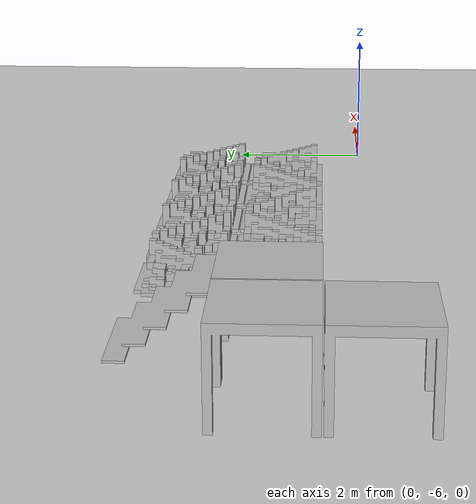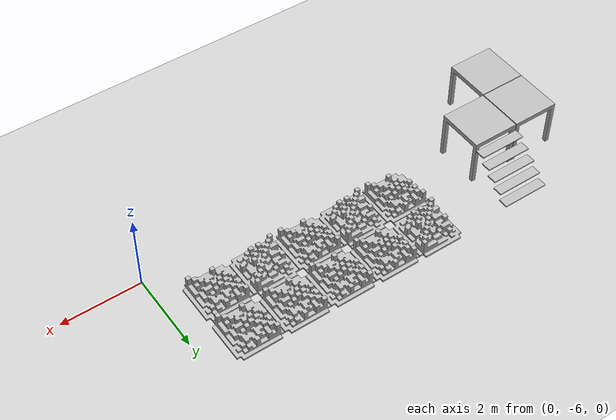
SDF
<sdf version="1.4">
 <world name="default">
  <scene><ambient>0.5 0.5 0.5 1</ambient><background>0.5 0.5 0.5 1</background><shadows>false</shadows></scene>
  <include><uri>model://sun</uri></include>
  <physics type="ode">
   <max_step_size>0.001</max_step_size>
   <real_time_factor>1</real_time_factor>
   <real_time_update_rate>1000</real_time_update_rate>
   <gravity>0 0 -9.8</gravity>
  </physics>
  <light type="directional" name="directional_light_1">
   <cast_shadows>false</cast_shadows>
   <pose>0 0 30 0.1 0.1 0</pose>
   <diffuse>.5 .5 .5 1</diffuse>
   <specular>.1 .1 .1 1</specular>
   <attenuation><range>300</range></attenuation>
   <direction>0.1 0.1 -1</direction>
  </light>
  <model name="plane_model">
   <static>true</static>
   <link name="plane_model_link">
    <collision name="plane_model_collision">
     <geometry><plane><normal>0 0 1</normal><size>100 100</size></plane></geometry>
     <surface>
      <friction>
       <ode><mu>10.0</mu><mu2>10.0</mu2><fdir1>0 0 0</fdir1><slip1>0</slip1><slip2>0</slip2></ode>
      </friction>
      <bounce><restitution_coefficient>0</restitution_coefficient><threshold>1000000.0</threshold></bounce>
      <contact>
       <ode>
        <soft_cfm>0</soft_cfm>
        <soft_erp>0.2</soft_erp>
        <kp>1e10</kp>
        <kd>1</kd>
        <max_vel>100.0</max_vel>
        <min_depth>0.0001</min_depth>
       </ode>
      </contact>
     </surface>
    </collision>
    <visual name="plane_model_visual">
     <cast_shadows>false</cast_shadows>
     <geometry><plane><normal>0 0 1</normal><size>100 100</size></plane></geometry>
     <material><script>Gazebo/Grey</script></material>
    </visual>
   </link>
  </model>
  <model name="stairs_120_1">
   <static>true</static>
   <link name="stairs_120_1_link">
    <pose>-8.4 -3.6 0 0 0 -3.14159</pose>
    <collision name="stairs_120_1_collision">
     <geometry><mesh><uri>file://robocup/other/stairs_120.dae</uri><scale>1 1 1</scale></mesh></geometry>
    </collision>
    <visual name="stairs_120_1_visual">
     <cast_shadows>false</cast_shadows>
     <geometry><mesh><uri>file://robocup/other/stairs_120.dae</uri><scale>1 1 1</scale></mesh></geometry>
    </visual>
   </link>
  </model>
  <model name="elevated_floor_120_1">
   <static>true</static>
   <link name="elevated_floor_120_1_link">
    <pose>-9.6 -4.8 0 0 0 0</pose>
    <collision name="elevated_floor_120_1_collision">
     <geometry><mesh><uri>file://floors/elevated_floor_120.dae</uri><scale>1 1 1</scale></mesh></geometry>
    </collision>
    <visual name="elevated_floor_120_1_visual">
     <cast_shadows>false</cast_shadows>
     <geometry><mesh><uri>file://floors/elevated_floor_120.dae</uri><scale>1 1 1</scale></mesh></geometry>
    </visual>
   </link>
  </model>
  <model name="elevated_floor_120_2">
   <static>true</static>
   <link name="elevated_floor_120_2_link">
    <pose>-8.4 -4.8 0 0 0 0</pose>
    <collision name="elevated_floor_120_2_collision">
     <geometry><mesh><uri>file://floors/elevated_floor_120.dae</uri><scale>1 1 1</scale></mesh></geometry>
    </collision>
    <visual name="elevated_floor_120_2_visual">
     <cast_shadows>false</cast_shadows>
     <geometry><mesh><uri>file://floors/elevated_floor_120.dae</uri><scale>1 1 1</scale></mesh></geometry>
    </visual>
   </link>
  </model>
  <model name="elevated_floor_120_3">
   <static>true</static>
   <link name="elevated_floor_120_3_link">
    <pose>-9.6 -6 0 0 0 0</pose>
    <collision name="elevated_floor_120_3_collision">
     <geometry><mesh><uri>file://floors/elevated_floor_120.dae</uri><scale>1 1 1</scale></mesh></geometry>
    </collision>
    <visual name="elevated_floor_120_3_visual">
     <cast_shadows>false</cast_shadows>
     <geometry><mesh><uri>file://floors/elevated_floor_120.dae</uri><scale>1 1 1</scale></mesh></geometry>
    </visual>
   </link>
  </model>
  <model name="stepfield_red_diagonal_1">
   <static>true</static>
   <link name="stepfield_red_diagonal_1_link">
    <pose>-6 -3.6 0 0 0 0</pose>
    <collision name="stepfield_red_diagonal_1_collision">
     <geometry>
      <mesh><uri>file://robocup/other/stepfield_red_diagonal.dae</uri><scale>1 1 1</scale></mesh>
     </geometry>
    </collision>
    <visual name="stepfield_red_diagonal_1_visual">
     <cast_shadows>false</cast_shadows>
     <geometry>
      <mesh><uri>file://robocup/other/stepfield_red_diagonal.dae</uri><scale>1 1 1</scale></mesh>
     </geometry>
    </visual>
   </link>
  </model>
  <model name="stepfield_red_diagonal_2">
   <static>true</static>
   <link name="stepfield_red_diagonal_2_link">
    <pose>-4.8 -4.8 0 0 0 0</pose>
    <collision name="stepfield_red_diagonal_2_collision">
     <geometry>
      <mesh><uri>file://robocup/other/stepfield_red_diagonal.dae</uri><scale>1 1 1</scale></mesh>
     </geometry>
    </collision>
    <visual name="stepfield_red_diagonal_2_visual">
     <cast_shadows>false</cast_shadows>
     <geometry>
      <mesh><uri>file://robocup/other/stepfield_red_diagonal.dae</uri><scale>1 1 1</scale></mesh>
     </geometry>
    </visual>
   </link>
  </model>
  <model name="stepfield_red_diagonal_3">
   <static>true</static>
   <link name="stepfield_red_diagonal_3_link">
    <pose>-4.8 -3.6 0 0 0 -1.5708</pose>
    <collision name="stepfield_red_diagonal_3_collision">
     <geometry>
      <mesh><uri>file://robocup/other/stepfield_red_diagonal.dae</uri><scale>1 1 1</scale></mesh>
     </geometry>
    </collision>
    <visual name="stepfield_red_diagonal_3_visual">
     <cast_shadows>false</cast_shadows>
     <geometry>
      <mesh><uri>file://robocup/other/stepfield_red_diagonal.dae</uri><scale>1 1 1</scale></mesh>
     </geometry>
    </visual>
   </link>
  </model>
  <model name="stepfield_red_diagonal_4">
   <static>true</static>
   <link name="stepfield_red_diagonal_4_link">
    <pose>-6 -4.8 0 0 0 -1.5708</pose>
    <collision name="stepfield_red_diagonal_4_collision">
     <geometry>
      <mesh><uri>file://robocup/other/stepfield_red_diagonal.dae</uri><scale>1 1 1</scale></mesh>
     </geometry>
    </collision>
    <visual name="stepfield_red_diagonal_4_visual">
     <cast_shadows>false</cast_shadows>
     <geometry>
      <mesh><uri>file://robocup/other/stepfield_red_diagonal.dae</uri><scale>1 1 1</scale></mesh>
     </geometry>
    </visual>
   </link>
  </model>
  <model name="stepfield_red_diagonal_5">
   <static>true</static>
   <link name="stepfield_red_diagonal_5_link">
    <pose>-3.6 -3.6 0 0 0 -1.5708</pose>
    <collision name="stepfield_red_diagonal_5_collision">
     <geometry>
      <mesh><uri>file://robocup/other/stepfield_red_diagonal.dae</uri><scale>1 1 1</scale></mesh>
     </geometry>
    </collision>
    <visual name="stepfield_red_diagonal_5_visual">
     <cast_shadows>false</cast_shadows>
     <geometry>
      <mesh><uri>file://robocup/other/stepfield_red_diagonal.dae</uri><scale>1 1 1</scale></mesh>
     </geometry>
    </visual>
   </link>
  </model>
  <model name="stepfield_red_diagonal_6">
   <static>true</static>
   <link name="stepfield_red_diagonal_6_link">
    <pose>-3.6 -4.8 0 0 0 -1.5708</pose>
    <collision name="stepfield_red_diagonal_6_collision">
     <geometry>
      <mesh><uri>file://robocup/other/stepfield_red_diagonal.dae</uri><scale>1 1 1</scale></mesh>
     </geometry>
    </collision>
    <visual name="stepfield_red_diagonal_6_visual">
     <cast_shadows>false</cast_shadows>
     <geometry>
      <mesh><uri>file://robocup/other/stepfield_red_diagonal.dae</uri><scale>1 1 1</scale></mesh>
     </geometry>
    </visual>
   </link>
  </model>
  <model name="stepfield_red_diagonal_7">
   <static>true</static>
   <link name="stepfield_red_diagonal_7_link">
    <pose>-2.4 -3.6 0 0 0 -1.5708</pose>
    <collision name="stepfield_red_diagonal_7_collision">
     <geometry>
      <mesh><uri>file://robocup/other/stepfield_red_diagonal.dae</uri><scale>1 1 1</scale></mesh>
     </geometry>
    </collision>
    <visual name="stepfield_red_diagonal_7_visual">
     <cast_shadows>false</cast_shadows>
     <geometry>
      <mesh><uri>file://robocup/other/stepfield_red_diagonal.dae</uri><scale>1 1 1</scale></mesh>
     </geometry>
    </visual>
   </link>
  </model>
  <model name="stepfield_red_diagonal_8">
   <static>true</static>
   <link name="stepfield_red_diagonal_8_link">
    <pose>-1.2 -3.6 0 0 0 -1.5708</pose>
    <collision name="stepfield_red_diagonal_8_collision">
     <geometry>
      <mesh><uri>file://robocup/other/stepfield_red_diagonal.dae</uri><scale>1 1 1</scale></mesh>
     </geometry>
    </collision>
    <visual name="stepfield_red_diagonal_8_visual">
     <cast_shadows>false</cast_shadows>
     <geometry>
      <mesh><uri>file://robocup/other/stepfield_red_diagonal.dae</uri><scale>1 1 1</scale></mesh>
     </geometry>
    </visual>
   </link>
  </model>
  <model name="stepfield_red_diagonal_9">
   <static>true</static>
   <link name="stepfield_red_diagonal_9_link">
    <pose>-1.2 -4.8 0 0 0 -1.5708</pose>
    <collision name="stepfield_red_diagonal_9_collision">
     <geometry>
      <mesh><uri>file://robocup/other/stepfield_red_diagonal.dae</uri><scale>1 1 1</scale></mesh>
     </geometry>
    </collision>
    <visual name="stepfield_red_diagonal_9_visual">
     <cast_shadows>false</cast_shadows>
     <geometry>
      <mesh><uri>file://robocup/other/stepfield_red_diagonal.dae</uri><scale>1 1 1</scale></mesh>
     </geometry>
    </visual>
   </link>
  </model>
  <model name="stepfield_red_diagonal_10">
   <static>true</static>
   <link name="stepfield_red_diagonal_10_link">
    <pose>-2.4 -4.8 0 0 0 0</pose>
    <collision name="stepfield_red_diagonal_10_collision">
     <geometry>
      <mesh><uri>file://robocup/other/stepfield_red_diagonal.dae</uri><scale>1 1 1</scale></mesh>
     </geometry>
    </collision>
    <visual name="stepfield_red_diagonal_10_visual">
     <cast_shadows>false</cast_shadows>
     <geometry>
      <mesh><uri>file://robocup/other/stepfield_red_diagonal.dae</uri><scale>1 1 1</scale></mesh>
     </geometry>
    </visual>
   </link>
  </model>
 </world>
</sdf>
